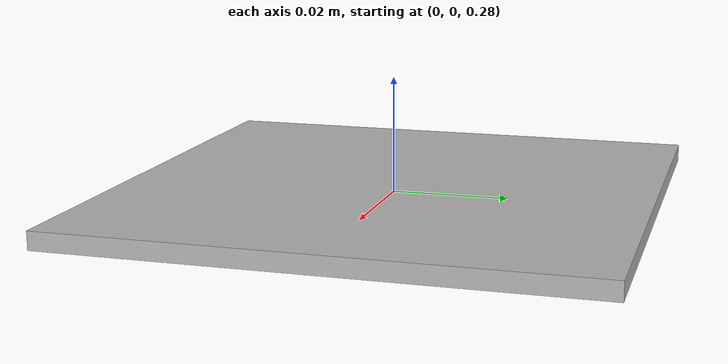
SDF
<?xml version="1.0" ?>
<sdf version="1.5">
  <model name="April_tag">
    <static>true</static>
    <link name="ARtag">
      <pose frame=''>0 0 0.28 0 -0 0</pose>
      <inertial>
        <inertia>
          <ixx>1</ixx>
          <ixy>0</ixy>
          <ixz>0</ixz>
          <iyy>1</iyy>
          <iyz>0</iyz>
          <izz>1</izz>
        </inertia>
        <mass>4</mass>
        <pose frame=''>0 0 0 0 -0 0</pose>
      </inertial>
      <self_collide>0</self_collide>
      <kinematic>0</kinematic>
      <gravity>1</gravity>
      <collision name="collision">
        <laser_retro>0</laser_retro>
        <max_contacts>10</max_contacts>
        <pose frame=''>0 0 0 0 -0 0</pose>
        <geometry>
          <mesh>
            <uri>model://AprilTags/meshes/ARtag0001.dae</uri>
            <scale>1 1 1</scale>
          </mesh>
        </geometry>
        <surface>
          <friction>
            <ode>
              <mu>1</mu>
              <mu2>1</mu2>
              <fdir1>0 0 0</fdir1>
              <slip1>0</slip1>
              <slip2>0</slip2>
            </ode>
            <torsional>
              <coefficient>1</coefficient>
              <patch_radius>0</patch_radius>
              <surface_radius>0</surface_radius>
              <use_patch_radius>1</use_patch_radius>
              <ode>
                <slip>0</slip>
              </ode>
            </torsional>
          </friction>
          <bounce>
            <restitution_coefficient>0</restitution_coefficient>
            <threshold>1e+06</threshold>
          </bounce>
          <contact>
            <collide_without_contact>0</collide_without_contact>
            <collide_without_contact_bitmask>1</collide_without_contact_bitmask>
            <collide_bitmask>1</collide_bitmask>
            <ode>
              <soft_cfm>0</soft_cfm>
              <soft_erp>0.2</soft_erp>
              <kp>1e+13</kp>
              <kd>1</kd>
              <max_vel>0.01</max_vel>
              <min_depth>0</min_depth>
            </ode>
            <bullet>
              <split_impulse>1</split_impulse>
              <split_impulse_penetration_threshold>-0.01</split_impulse_penetration_threshold>
              <soft_cfm>0</soft_cfm>
              <soft_erp>0.2</soft_erp>
              <kp>1e+13</kp>
              <kd>1</kd>
            </bullet>
          </contact>
        </surface>
      </collision>
      <visual name="visual">
        <cast_shadows>false</cast_shadows>
        <transparency>0</transparency>
        <geometry>
          <mesh>
            <uri>model://AprilTags/meshes/ARtag0001.dae</uri>
          </mesh>
        </geometry>
        <material>
          <shader type='vertex'>
            <normal_map>__default__</normal_map>
          </shader>
        </material>
      </visual>
    </link>
    <static>0</static>
    <allow_auto_disable>1</allow_auto_disable>
  </model>
</sdf>
